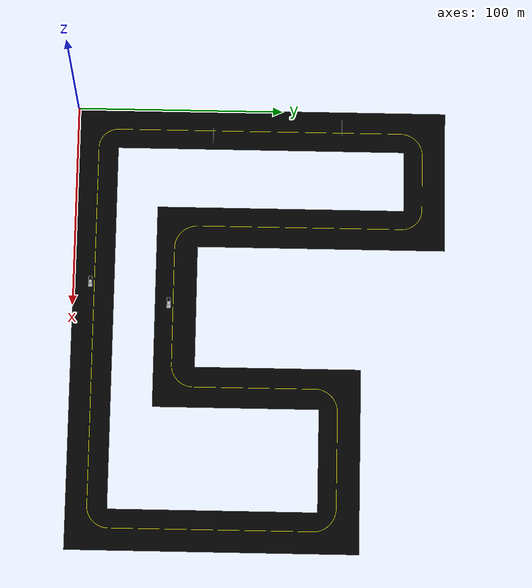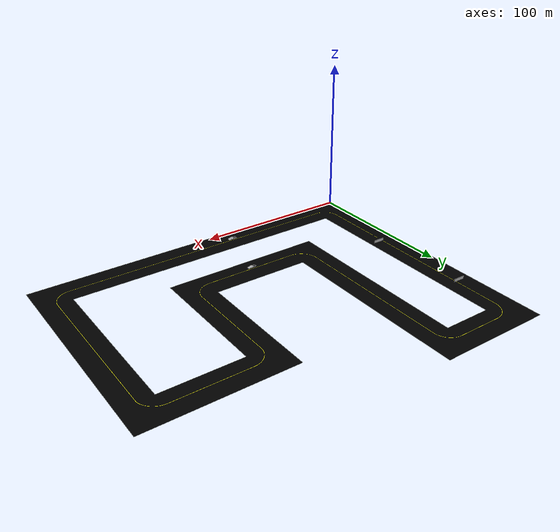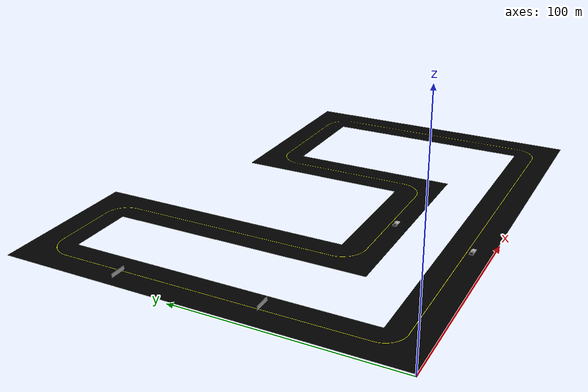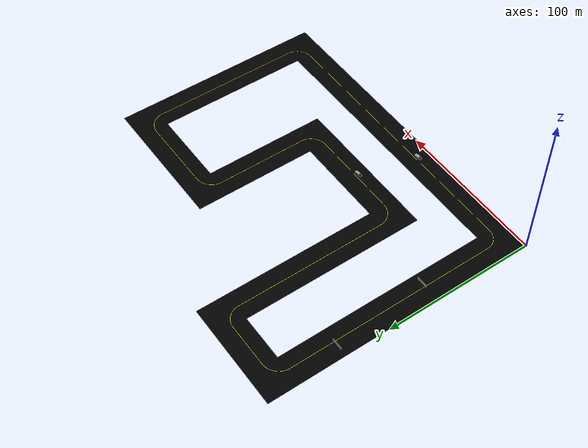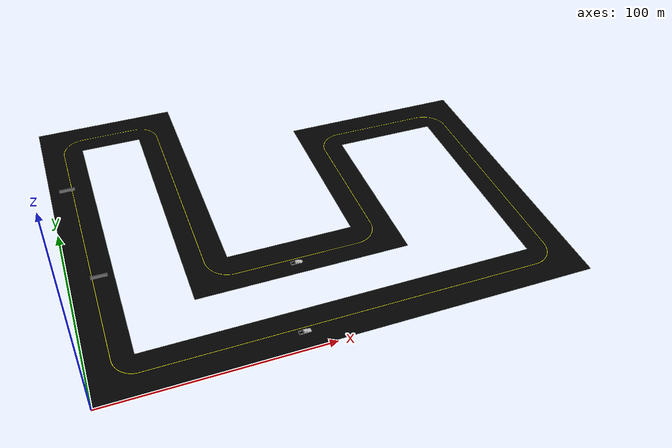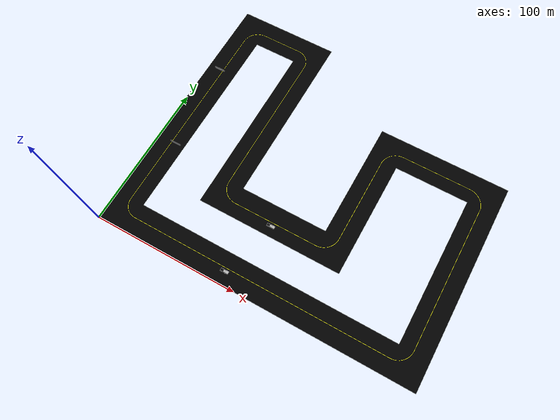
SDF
<sdf version="1.6">
 <world name="default">
  <light name="sun" type="directional">
   <pose>0 0 10 0 -0 0</pose>
   <diffuse>0.8 0.8 0.8 1</diffuse>
   <specular>0.2 0.2 0.2 1</specular>
   <attenuation>
    <range>1000</range>
    <constant>0.9</constant>
    <linear>0.01</linear>
    <quadratic>0.001</quadratic>
   </attenuation>
   <direction>-0.5 0.1 -0.9</direction>
  </light>
  <model name="LineTrack">
   <pose>0 0 1 0 -0 0</pose>
   <static>1</static>
   <link name="link">
    <inertial><mass>1000</mass></inertial>
    <collision name="collision">
     <geometry><mesh><uri>model://LineTrack/PISTA4.dae</uri></mesh></geometry>
    </collision>
    <visual name="visual"><geometry><mesh><uri>model://LineTrack/PISTA4.dae</uri></mesh></geometry></visual>
   </link>
  </model>
  <gravity>0 0 -9.8</gravity>
  <magnetic_field>6e-06 2.3e-05 -4.2e-05</magnetic_field>
  <atmosphere type="adiabatic"/>
  <physics name="default_physics" default="0" type="ode">
   <max_step_size>0.001</max_step_size>
   <real_time_factor>1</real_time_factor>
   <real_time_update_rate>1000</real_time_update_rate>
  </physics>
  <scene><ambient>0.4 0.4 0.4 1</ambient><background>0.7 0.7 0.7 1</background><shadows>1</shadows></scene>
  <spherical_coordinates>
   <surface_model>EARTH_WGS84</surface_model>
   <latitude_deg>0</latitude_deg>
   <longitude_deg>0</longitude_deg>
   <elevation>0</elevation>
   <heading_deg>0</heading_deg>
  </spherical_coordinates>
  <model name="grey_wall">
   <static>1</static>
   <link name="link">
    <pose>0 0 1.4 0 -0 0</pose>
    <collision name="collision"><geometry><box><size>7.5 0.2 2.8</size></box></geometry></collision>
    <visual name="visual">
     <cast_shadows>0</cast_shadows>
     <geometry><box><size>7.5 0.2 2.8</size></box></geometry>
     <material>
      <script>
       <uri>model://grey_wall/materials/scripts</uri>
       <uri>model://grey_wall/materials/textures</uri>
       <name>vrc/grey_wall</name>
      </script>
     </material>
    </visual>
   </link>
   <pose>8.30546 129.392 0 0 -0 0</pose>
  </model>
  <model name="grey_wall_0">
   <static>1</static>
   <link name="link">
    <pose>0 0 1.4 0 -0 0</pose>
    <collision name="collision"><geometry><box><size>7.5 0.2 2.8</size></box></geometry></collision>
    <visual name="visual">
     <cast_shadows>0</cast_shadows>
     <geometry><box><size>7.5 0.2 2.8</size></box></geometry>
     <material>
      <script>
       <uri>model://grey_wall/materials/scripts</uri>
       <uri>model://grey_wall/materials/textures</uri>
       <name>vrc/grey_wall</name>
      </script>
     </material>
    </visual>
   </link>
   <pose>13.6507 66.3219 0 0 -0 0</pose>
  </model>
  <model name="pickup">
   <static>1</static>
   <link name="link">
    <collision name="collision">
     <pose>0 0 0 0 0 -1.5708</pose>
     <geometry><mesh><uri>model://pickup/meshes/pickup.dae</uri></mesh></geometry>
    </collision>
    <visual name="visual">
     <pose>0 0 0 0 0 -1.5708</pose>
     <geometry><mesh><uri>model://pickup/meshes/pickup.dae</uri></mesh></geometry>
    </visual>
   </link>
   <pose>88.4636 8.32291 0 0 -0 0</pose>
  </model>
  <model name="pickup_0">
   <static>1</static>
   <link name="link">
    <collision name="collision">
     <pose>0 0 0 0 0 -1.5708</pose>
     <geometry><mesh><uri>model://pickup/meshes/pickup.dae</uri></mesh></geometry>
    </collision>
    <visual name="visual">
     <pose>0 0 0 0 0 -1.5708</pose>
     <geometry><mesh><uri>model://pickup/meshes/pickup.dae</uri></mesh></geometry>
    </visual>
   </link>
   <pose>98.5222 46.606 0 0 -0 0</pose>
  </model>
 </world>
</sdf>
